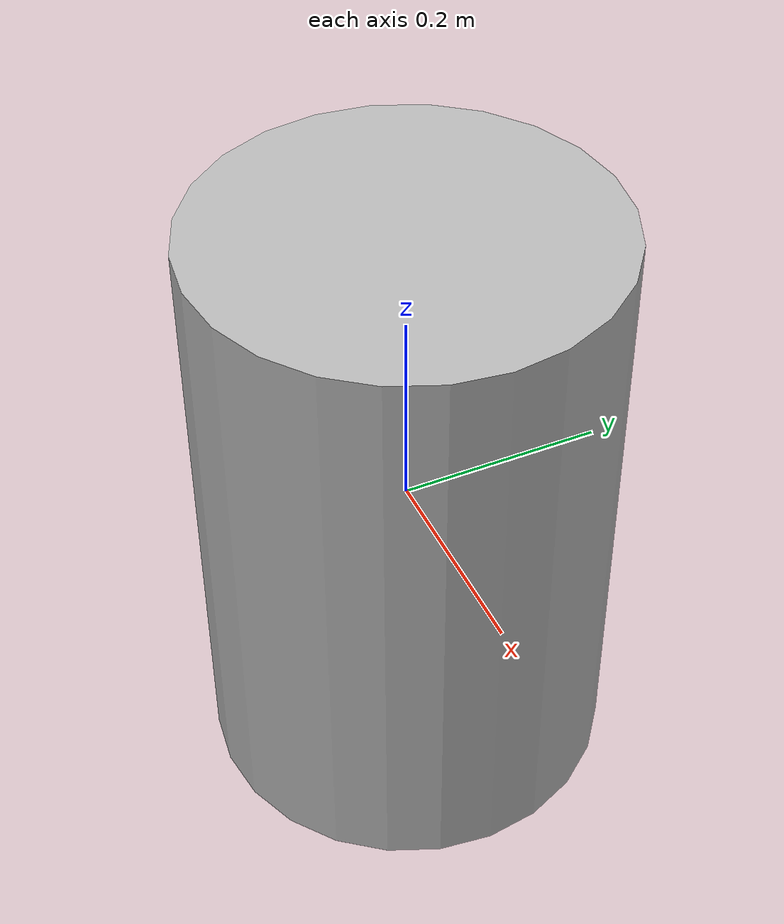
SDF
<?xml version="1.0"?>
<sdf version="1.6">
  <model name="tethys">
    <!-- Body -->
    <link name="base_link">
      <inertial>
        <mass>147.8671</mass>
        <inertia>
          <ixx>3.000000</ixx>
          <ixy>0</ixy>
          <ixz>0</ixz>
          <iyy>41.980233</iyy>
          <iyz>0</iyz>
          <izz>41.980233</izz>
        </inertia>
      </inertial>

      <collision name="main_body_buoyancy">
        <geometry>
          <box>
            <size>2 0.3 0.246445166667</size>
          </box>
        </geometry>
      </collision>

      <visual name="visual">
        <geometry>
        <cylinder>
            <radius>0.2</radius>
            <length>0.6</length>
          </cylinder>
        </geometry>
      </visual>
    </link>

    <!-- Propeller -->
    <link name="propeller">
      <pose>1.43162 0 0 0 0 0</pose>
      <inertial>
        <pose>0 0 0 0 0 0</pose>
        <mass>0.09</mass>
        <inertia>
          <ixx>0.000143971303</ixx>
          <ixy>0.000000000008</ixy>
          <ixz>-0.000000000224</ixz>
          <iyy>0.000140915448</iyy>
          <iyz>-0.000025236433</iyz>
          <izz>0.000033571862</izz>
        </inertia>
      </inertial>

      <collision name="collision">
        <geometry>
          <box>
            <size>0.03 0.1 0.03</size>
          </box>
        </geometry>
      </collision>

      <visual name= "visual">
        <pose>-1.43162 0 0 0 0 0</pose>
        <geometry>
          <cylinder>
            <radius>0.1</radius>
            <length>0.1</length>
          </cylinder>
        </geometry>
      </visual>

    </link>

    <joint name="propeller_joint" type="revolute">
      <pose>0 0 0 0 0 0</pose>
      <parent>base_link</parent>
      <child>propeller</child>
      <axis>
        <xyz>1 0 0</xyz>
        <limit>
          <lower>-1e+12</lower>
          <upper>1e+12</upper>
          <effort>-1</effort>
          <velocity>-1</velocity>
        </limit>
      </axis>
    </joint>
  </model>
</sdf>
